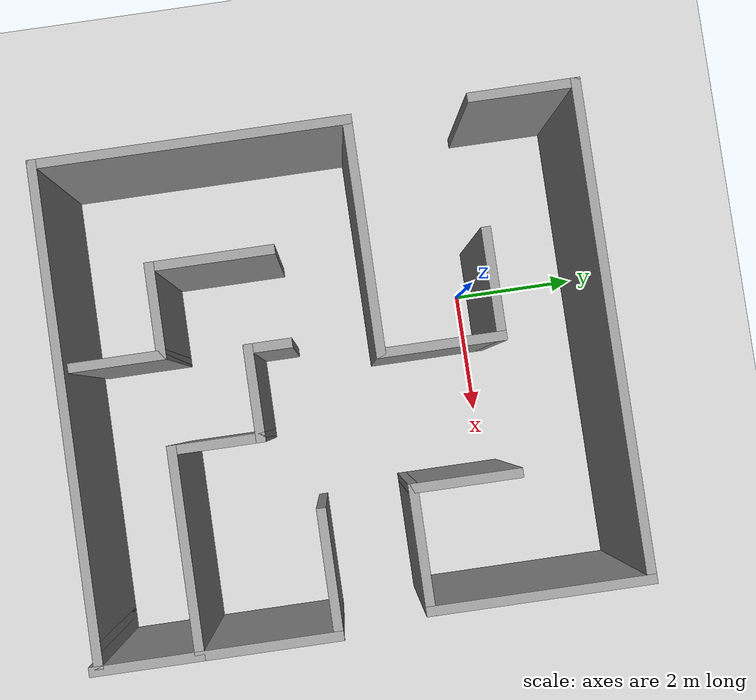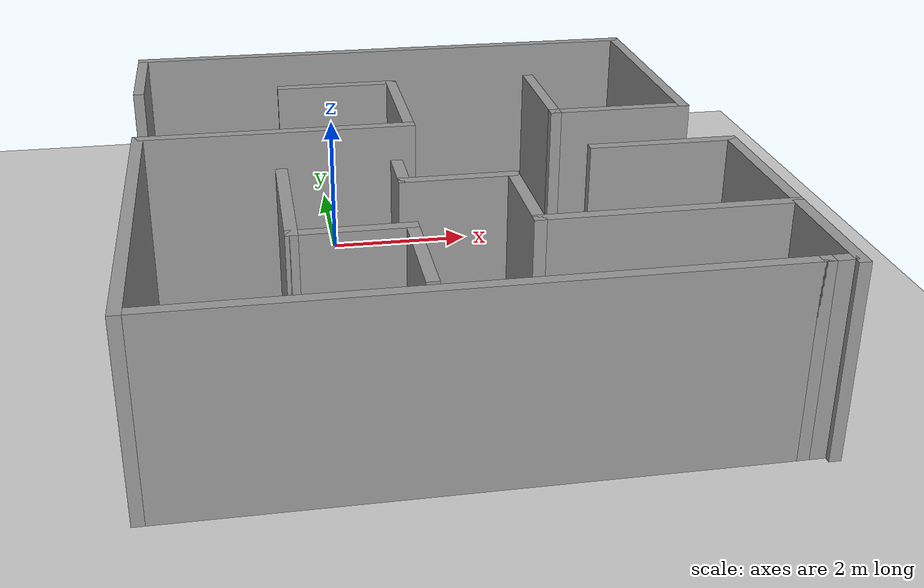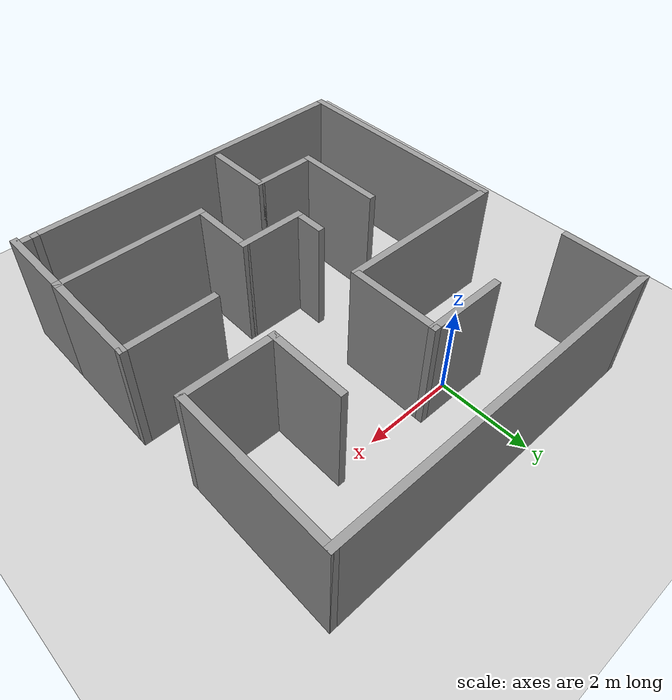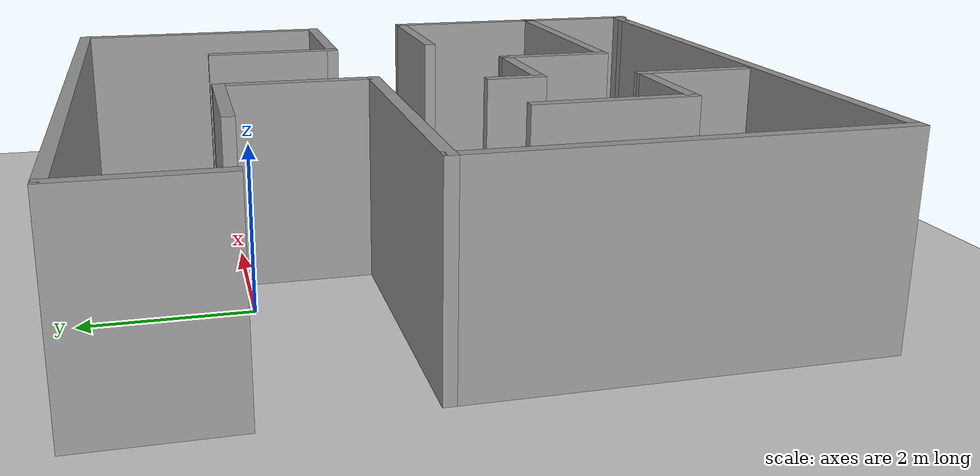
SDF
<sdf version="1.6">
 <world name="default">
  <light name="sun" type="directional">
   <pose>0 0 10 0 -0 0</pose>
   <diffuse>0.8 0.8 0.8 1</diffuse>
   <specular>0.2 0.2 0.2 1</specular>
   <attenuation>
    <range>1000</range>
    <constant>0.9</constant>
    <linear>0.01</linear>
    <quadratic>0.001</quadratic>
   </attenuation>
   <direction>-0.5 0.1 -0.9</direction>
  </light>
  <model name="ground_plane">
   <static>1</static>
   <link name="link">
    <collision name="collision">
     <geometry><plane><normal>0 0 1</normal><size>100 100</size></plane></geometry>
     <surface>
      <contact><collide_bitmask>65535</collide_bitmask></contact>
      <friction><ode><mu>100</mu><mu2>50</mu2></ode></friction>
     </surface>
    </collision>
    <visual name="visual">
     <cast_shadows>0</cast_shadows>
     <geometry><plane><normal>0 0 1</normal><size>100 100</size></plane></geometry>
     <material>
      <script><uri>file://media/materials/scripts/gazebo.material</uri><name>Gazebo/Grey</name></script>
     </material>
    </visual>
   </link>
  </model>
  <gravity>0 0 -9.8</gravity>
  <magnetic_field>6e-06 2.3e-05 -4.2e-05</magnetic_field>
  <atmosphere type="adiabatic"/>
  <physics name="default_physics" default="0" type="ode">
   <max_step_size>0.001</max_step_size>
   <real_time_factor>1</real_time_factor>
   <real_time_update_rate>1000</real_time_update_rate>
  </physics>
  <scene><ambient>0.4 0.4 0.4 1</ambient><background>0.7 0.7 0.7 1</background><shadows>1</shadows></scene>
  <audio><device>default</device></audio>
  <spherical_coordinates>
   <surface_model>EARTH_WGS84</surface_model>
   <latitude_deg>0</latitude_deg>
   <longitude_deg>0</longitude_deg>
   <elevation>0</elevation>
   <heading_deg>0</heading_deg>
  </spherical_coordinates>
  <model name="maze3">
   <pose>1.13787 -2.30018 0 0 -0 0</pose>
   <link name="Wall_32">
    <collision name="Wall_32_Collision">
     <geometry><box><size>2 0.15 2.5</size></box></geometry>
     <pose>0 0 1.25 0 -0 0</pose>
    </collision>
    <visual name="Wall_32_Visual">
     <pose>0 0 1.25 0 -0 0</pose>
     <geometry><box><size>2 0.15 2.5</size></box></geometry>
     <material>
      <script><uri>file://media/materials/scripts/gazebo.material</uri><name>Gazebo/Grey</name></script>
      <ambient>1 1 1 1</ambient>
     </material>
     <meta><layer>0</layer></meta>
    </visual>
    <pose>-0.215431 1.6201 0 0 -0 1.5708</pose>
   </link>
   <link name="Wall_33">
    <collision name="Wall_33_Collision">
     <geometry><box><size>1.75 0.15 2.5</size></box></geometry>
     <pose>0 0 1.25 0 -0 0</pose>
    </collision>
    <visual name="Wall_33_Visual">
     <pose>0 0 1.25 0 -0 0</pose>
     <geometry><box><size>1.75 0.15 2.5</size></box></geometry>
     <material>
      <script><uri>file://media/materials/scripts/gazebo.material</uri><name>Gazebo/Grey</name></script>
      <ambient>1 1 1 1</ambient>
     </material>
     <meta><layer>0</layer></meta>
    </visual>
    <pose>-1.01543 2.54509 0 0 -0 3.14159</pose>
   </link>
   <link name="Wall_35">
    <collision name="Wall_35_Collision">
     <geometry><box><size>1.75 0.15 2.5</size></box></geometry>
     <pose>0 0 1.25 0 -0 0</pose>
    </collision>
    <visual name="Wall_35_Visual">
     <pose>0 0 1.25 0 -0 0</pose>
     <geometry><box><size>1.75 0.15 2.5</size></box></geometry>
     <material>
      <script><uri>file://media/materials/scripts/gazebo.material</uri><name>Gazebo/Grey</name></script>
      <ambient>1 1 1 1</ambient>
     </material>
     <meta><layer>0</layer></meta>
    </visual>
    <pose>-3.88384 3.43191 0 0 -0 1.5708</pose>
   </link>
   <link name="Wall_36">
    <collision name="Wall_36_Collision">
     <geometry><box><size>7.75 0.15 2.5</size></box></geometry>
     <pose>0 0 1.25 0 -0 0</pose>
    </collision>
    <visual name="Wall_36_Visual">
     <pose>0 0 1.25 0 -0 0</pose>
     <geometry><box><size>7.75 0.15 2.5</size></box></geometry>
     <material>
      <script><uri>file://media/materials/scripts/gazebo.material</uri><name>Gazebo/Grey</name></script>
      <ambient>1 1 1 1</ambient>
     </material>
     <meta><layer>0</layer></meta>
    </visual>
    <pose>-0.083838 4.23191 0 0 -0 0</pose>
   </link>
   <link name="Wall_37">
    <collision name="Wall_37_Collision">
     <geometry><box><size>3.5 0.15 2.5</size></box></geometry>
     <pose>0 0 1.25 0 -0 0</pose>
    </collision>
    <visual name="Wall_37_Visual">
     <pose>0 0 1.25 0 -0 0</pose>
     <geometry><box><size>3.5 0.15 2.5</size></box></geometry>
     <material>
      <script><uri>file://media/materials/scripts/gazebo.material</uri><name>Gazebo/Grey</name></script>
      <ambient>1 1 1 1</ambient>
     </material>
     <meta><layer>0</layer></meta>
    </visual>
    <pose>3.71616 2.55691 0 0 -0 -1.5708</pose>
   </link>
   <link name="Wall_38">
    <collision name="Wall_38_Collision">
     <geometry><box><size>2 0.15 2.5</size></box></geometry>
     <pose>0 0 1.25 0 -0 0</pose>
    </collision>
    <visual name="Wall_38_Visual">
     <pose>0 0 1.25 0 -0 0</pose>
     <geometry><box><size>2 0.15 2.5</size></box></geometry>
     <material>
      <script><uri>file://media/materials/scripts/gazebo.material</uri><name>Gazebo/Grey</name></script>
      <ambient>1 1 1 1</ambient>
     </material>
     <meta><layer>0</layer></meta>
    </visual>
    <pose>2.79116 0.881908 0 0 -0 3.14159</pose>
   </link>
   <link name="Wall_39">
    <collision name="Wall_39_Collision">
     <geometry><box><size>1.75 0.15 2.5</size></box></geometry>
     <pose>0 0 1.25 0 -0 0</pose>
    </collision>
    <visual name="Wall_39_Visual">
     <pose>0 0 1.25 0 -0 0</pose>
     <geometry><box><size>1.75 0.15 2.5</size></box></geometry>
     <material>
      <script><uri>file://media/materials/scripts/gazebo.material</uri><name>Gazebo/Grey</name></script>
      <ambient>1 1 1 1</ambient>
     </material>
     <meta><layer>0</layer></meta>
    </visual>
    <pose>1.86616 1.68191 0 0 -0 1.5708</pose>
   </link>
   <link name="Wall_4">
    <collision name="Wall_4_Collision">
     <geometry><box><size>3.75 0.15 2.5</size></box></geometry>
     <pose>0 0 1.25 0 -0 0</pose>
    </collision>
    <visual name="Wall_4_Visual">
     <pose>0 0 1.25 0 -0 0</pose>
     <geometry><box><size>3.75 0.15 2.5</size></box></geometry>
     <material>
      <script><uri>file://media/materials/scripts/gazebo.material</uri><name>Gazebo/Grey</name></script>
      <ambient>1 1 1 1</ambient>
     </material>
     <meta><layer>0</layer></meta>
    </visual>
    <pose>-2.01543 0.695096 0 0 -0 0</pose>
   </link>
   <link name="Wall_42">
    <collision name="Wall_42_Collision">
     <geometry><box><size>5 0.15 2.5</size></box></geometry>
     <pose>0 0 1.25 0 -0 0</pose>
    </collision>
    <visual name="Wall_42_Visual">
     <pose>0 0 1.25 0 -0 0</pose>
     <geometry><box><size>5 0.15 2.5</size></box></geometry>
     <material>
      <script><uri>file://media/materials/scripts/gazebo.material</uri><name>Gazebo/Grey</name></script>
      <ambient>1 1 1 1</ambient>
     </material>
     <meta><layer>0</layer></meta>
    </visual>
    <pose>-3.81543 -1.72991 0 0 -0 -1.5708</pose>
   </link>
   <link name="Wall_46">
    <collision name="Wall_46_Collision">
     <geometry><box><size>0.15 0.15 2.5</size></box></geometry>
     <pose>0 0 1.25 0 -0 0</pose>
    </collision>
    <visual name="Wall_46_Visual">
     <pose>0 0 1.25 0 -0 0</pose>
     <geometry><box><size>0.15 0.15 2.5</size></box></geometry>
     <material>
      <script><uri>file://media/materials/scripts/gazebo.material</uri><name>Gazebo/Grey</name></script>
      <ambient>1 1 1 1</ambient>
     </material>
     <meta><layer>0</layer></meta>
    </visual>
    <pose>3.53457 -4.1549 0 0 -0 0</pose>
   </link>
   <link name="Wall_47">
    <collision name="Wall_47_Collision">
     <geometry><box><size>0.15 0.15 2.5</size></box></geometry>
     <pose>0 0 1.25 0 -0 0</pose>
    </collision>
    <visual name="Wall_47_Visual">
     <pose>0 0 1.25 0 -0 0</pose>
     <geometry><box><size>0.15 0.15 2.5</size></box></geometry>
     <material>
      <script><uri>file://media/materials/scripts/gazebo.material</uri><name>Gazebo/Grey</name></script>
      <ambient>1 1 1 1</ambient>
     </material>
     <meta><layer>0</layer></meta>
    </visual>
    <pose>3.53457 -4.1549 0 0 -0 0</pose>
   </link>
   <link name="Wall_50">
    <collision name="Wall_50_Collision">
     <geometry><box><size>7.75 0.15 2.5</size></box></geometry>
     <pose>0 0 1.25 0 -0 0</pose>
    </collision>
    <visual name="Wall_50_Visual">
     <pose>0 0 1.25 0 -0 0</pose>
     <geometry><box><size>7.75 0.15 2.5</size></box></geometry>
     <material>
      <script><uri>file://media/materials/scripts/gazebo.material</uri><name>Gazebo/Grey</name></script>
      <ambient>1 1 1 1</ambient>
     </material>
     <meta><layer>0</layer></meta>
    </visual>
    <pose>-0.015431 -4.1549 0 0 -0 0</pose>
   </link>
   <link name="Wall_53">
    <collision name="Wall_53_Collision">
     <geometry><box><size>2 0.15 2.5</size></box></geometry>
     <pose>0 0 1.25 0 -0 0</pose>
    </collision>
    <visual name="Wall_53_Visual">
     <pose>0 0 1.25 0 -0 0</pose>
     <geometry><box><size>2 0.15 2.5</size></box></geometry>
     <material>
      <script><uri>file://media/materials/scripts/gazebo.material</uri><name>Gazebo/Grey</name></script>
      <ambient>1 1 1 1</ambient>
     </material>
     <meta><layer>0</layer></meta>
    </visual>
    <pose>-2.01049 -1.66794 0 0 -0 -1.5708</pose>
   </link>
   <link name="Wall_54">
    <collision name="Wall_54_Collision">
     <geometry><box><size>1.5 0.15 2.5</size></box></geometry>
     <pose>0 0 1.25 0 -0 0</pose>
    </collision>
    <visual name="Wall_54_Visual">
     <pose>0 0 1.25 0 -0 0</pose>
     <geometry><box><size>1.5 0.15 2.5</size></box></geometry>
     <material>
      <script><uri>file://media/materials/scripts/gazebo.material</uri><name>Gazebo/Grey</name></script>
      <ambient>1 1 1 1</ambient>
     </material>
     <meta><layer>0</layer></meta>
    </visual>
    <pose>-1.33549 -2.59294 0 0 -0 0</pose>
   </link>
   <link name="Wall_55">
    <collision name="Wall_55_Collision">
     <geometry><box><size>1.5 0.15 2.5</size></box></geometry>
     <pose>0 0 1.25 0 -0 0</pose>
    </collision>
    <visual name="Wall_55_Visual">
     <pose>0 0 1.25 0 -0 0</pose>
     <geometry><box><size>1.5 0.15 2.5</size></box></geometry>
     <material>
      <script><uri>file://media/materials/scripts/gazebo.material</uri><name>Gazebo/Grey</name></script>
      <ambient>1 1 1 1</ambient>
     </material>
     <meta><layer>0</layer></meta>
    </visual>
    <pose>-0.660491 -3.26794 0 0 -0 -1.5708</pose>
   </link>
   <link name="Wall_57">
    <collision name="Wall_57_Collision">
     <geometry><box><size>0.75 0.15 2.5</size></box></geometry>
     <pose>0 0 1.25 0 -0 0</pose>
    </collision>
    <visual name="Wall_57_Visual">
     <pose>0 0 1.25 0 -0 0</pose>
     <geometry><box><size>0.75 0.15 2.5</size></box></geometry>
     <material>
      <script><uri>file://media/materials/scripts/gazebo.material</uri><name>Gazebo/Grey</name></script>
      <ambient>1 1 1 1</ambient>
     </material>
     <meta><layer>0</layer></meta>
    </visual>
    <pose>-0.566162 -0.981909 0 0 -0 -1.5708</pose>
   </link>
   <link name="Wall_58">
    <collision name="Wall_58_Collision">
     <geometry><box><size>1.5 0.15 2.5</size></box></geometry>
     <pose>0 0 1.25 0 -0 0</pose>
    </collision>
    <visual name="Wall_58_Visual">
     <pose>0 0 1.25 0 -0 0</pose>
     <geometry><box><size>1.5 0.15 2.5</size></box></geometry>
     <material>
      <script><uri>file://media/materials/scripts/gazebo.material</uri><name>Gazebo/Grey</name></script>
      <ambient>1 1 1 1</ambient>
     </material>
     <meta><layer>0</layer></meta>
    </visual>
    <pose>0.108838 -1.28191 0 0 -0 0</pose>
   </link>
   <link name="Wall_59">
    <collision name="Wall_59_Collision">
     <geometry><box><size>1.5 0.15 2.5</size></box></geometry>
     <pose>0 0 1.25 0 -0 0</pose>
    </collision>
    <visual name="Wall_59_Visual">
     <pose>0 0 1.25 0 -0 0</pose>
     <geometry><box><size>1.5 0.15 2.5</size></box></geometry>
     <material>
      <script><uri>file://media/materials/scripts/gazebo.material</uri><name>Gazebo/Grey</name></script>
      <ambient>1 1 1 1</ambient>
     </material>
     <meta><layer>0</layer></meta>
    </visual>
    <pose>0.783838 -1.95691 0 0 -0 -1.5708</pose>
   </link>
   <link name="Wall_60">
    <collision name="Wall_60_Collision">
     <geometry><box><size>3.25 0.15 2.5</size></box></geometry>
     <pose>0 0 1.25 0 -0 0</pose>
    </collision>
    <visual name="Wall_60_Visual">
     <pose>0 0 1.25 0 -0 0</pose>
     <geometry><box><size>3.25 0.15 2.5</size></box></geometry>
     <material>
      <script><uri>file://media/materials/scripts/gazebo.material</uri><name>Gazebo/Grey</name></script>
      <ambient>1 1 1 1</ambient>
     </material>
     <meta><layer>0</layer></meta>
    </visual>
    <pose>2.33384 -2.63191 0 0 -0 0</pose>
   </link>
   <link name="Wall_61">
    <collision name="Wall_61_Collision">
     <geometry><box><size>1.75 0.15 2.5</size></box></geometry>
     <pose>0 0 1.25 0 -0 0</pose>
    </collision>
    <visual name="Wall_61_Visual">
     <pose>0 0 1.25 0 -0 0</pose>
     <geometry><box><size>1.75 0.15 2.5</size></box></geometry>
     <material>
      <script><uri>file://media/materials/scripts/gazebo.material</uri><name>Gazebo/Grey</name></script>
      <ambient>1 1 1 1</ambient>
     </material>
     <meta><layer>0</layer></meta>
    </visual>
    <pose>3.88384 -3.43191 0 0 -0 -1.5708</pose>
   </link>
   <link name="Wall_63">
    <collision name="Wall_63_Collision">
     <geometry><box><size>2.25 0.15 2.5</size></box></geometry>
     <pose>0 0 1.25 0 -0 0</pose>
    </collision>
    <visual name="Wall_63_Visual">
     <pose>0 0 1.25 0 -0 0</pose>
     <geometry><box><size>2.25 0.15 2.5</size></box></geometry>
     <material>
      <script><uri>file://media/materials/scripts/gazebo.material</uri><name>Gazebo/Grey</name></script>
      <ambient>1 1 1 1</ambient>
     </material>
     <meta><layer>0</layer></meta>
    </visual>
    <pose>3.88384 -1.58191 0 0 -0 1.5708</pose>
   </link>
   <link name="Wall_64">
    <collision name="Wall_64_Collision">
     <geometry><box><size>2 0.15 2.5</size></box></geometry>
     <pose>0 0 1.25 0 -0 0</pose>
    </collision>
    <visual name="Wall_64_Visual">
     <pose>0 0 1.25 0 -0 0</pose>
     <geometry><box><size>2 0.15 2.5</size></box></geometry>
     <material>
      <script><uri>file://media/materials/scripts/gazebo.material</uri><name>Gazebo/Grey</name></script>
      <ambient>1 1 1 1</ambient>
     </material>
     <meta><layer>0</layer></meta>
    </visual>
    <pose>2.95884 -0.531909 0 0 -0 3.14159</pose>
   </link>
   <static>1</static>
  </model>
 </world>
</sdf>
